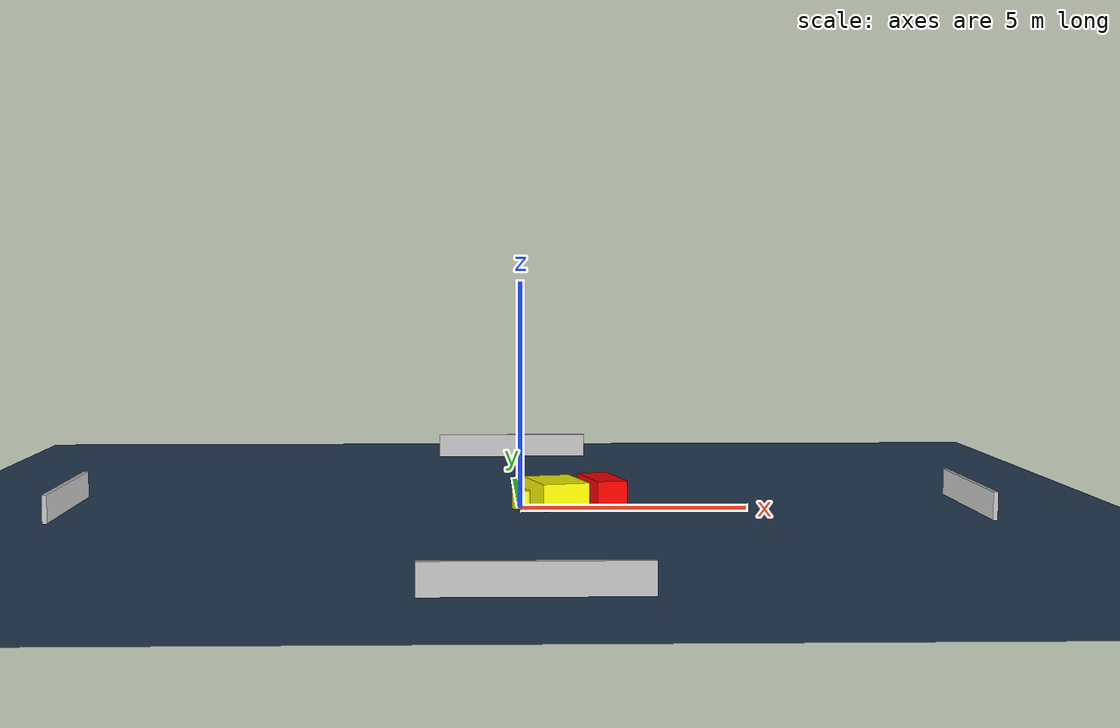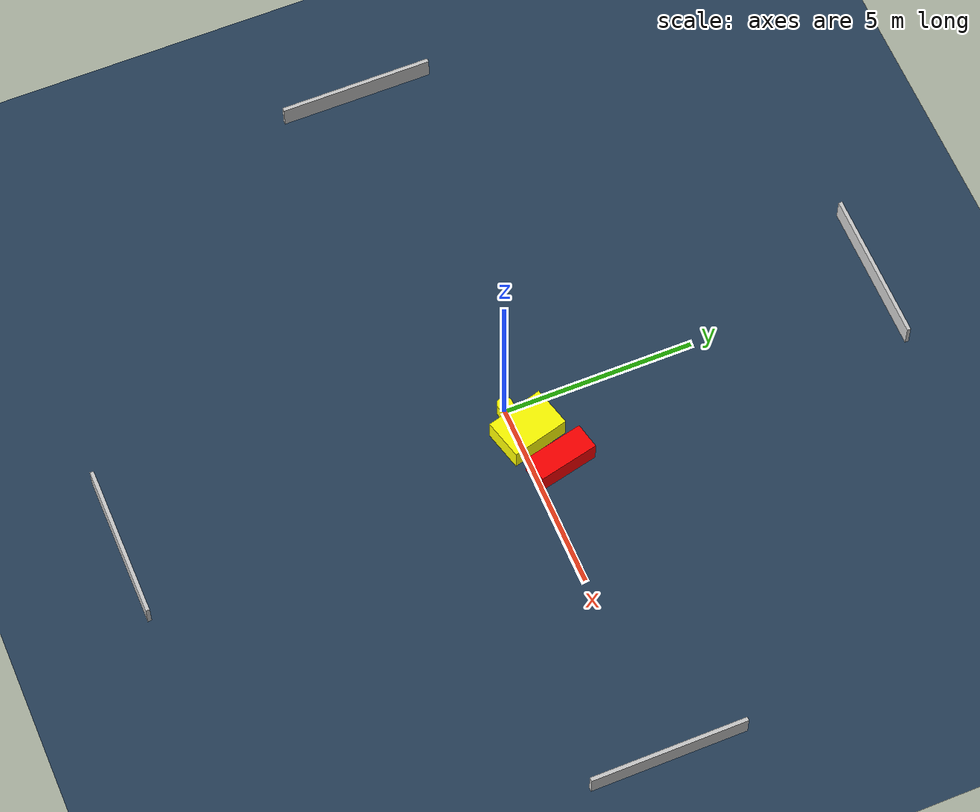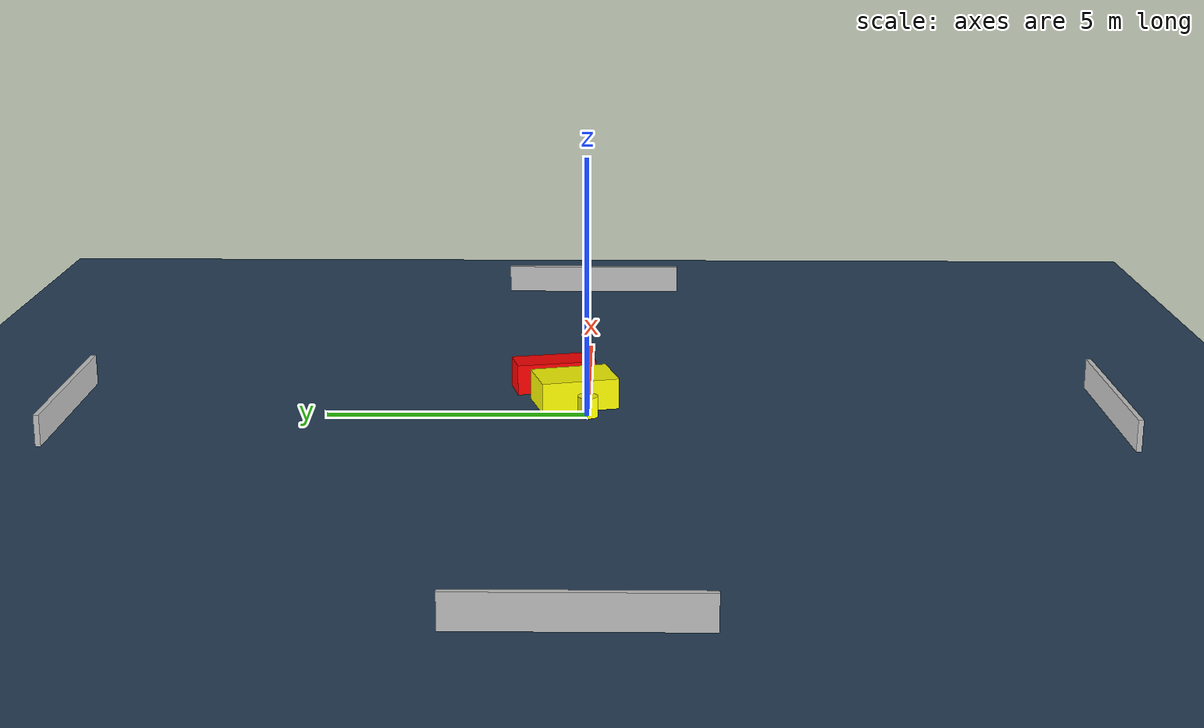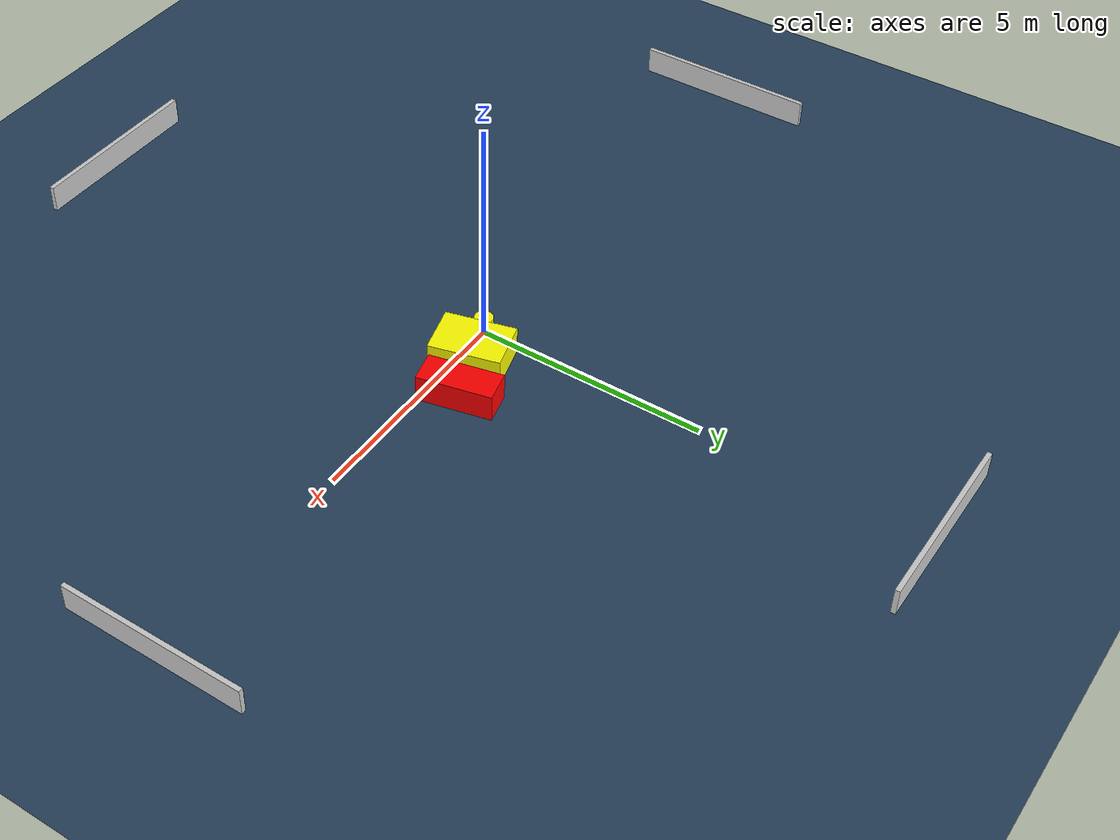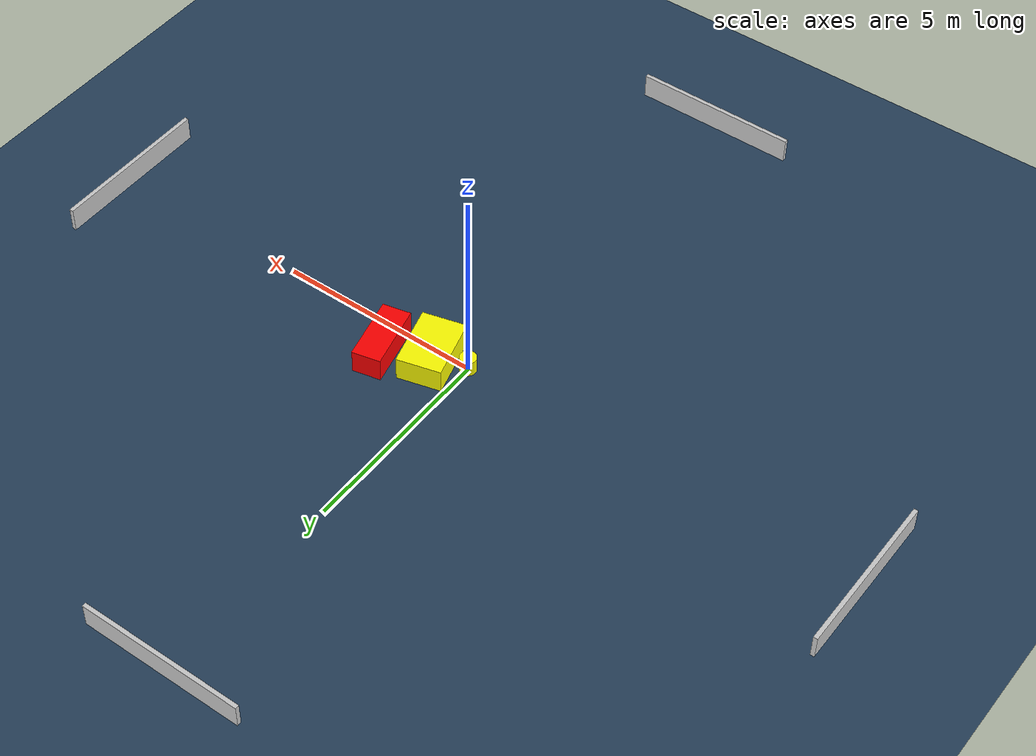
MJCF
<?xml version="1.0" ?>
<mujoco model="generated_environment">
  <option timestep="0.01" integrator="RK4" cone="elliptic"/>
  <default>
    <geom density="1"/>
  </default>
  <asset>
    <texture builtin="gradient" height="3072" name="skybox" rgb1="0.3 0.5 0.7" rgb2="0 0 0" type="skybox" width="512"/>
    <texture builtin="checker" height="300" name="groundplane" rgb1="0.2 0.3 0.4" rgb2="0.1 0.2 0.3" type="2d" width="300"/>
    <material name="groundplane" reflectance="0.2" texrepeat="5 5" texture="groundplane"/>
  </asset>
  <worldbody>
    <light dir="0 0 -1" directional="true" pos="0 0 1.5"/>
    <geom condim="3" friction="0.5 0.005 0.001" material="groundplane" name="floor" pos="0 0 0" size="0 0 0.05" type="plane"/>
    <body name="walls">
      <geom name="wall_1" condim="4" pos="-10.0 0.0 0.3" rgba="0.800000011920929 0.800000011920929 0.800000011920929 1.0" size="0.05 2.0 0.3" type="box"/>
      <geom name="wall_2" condim="4" pos="10.0 0.0 0.3" rgba="0.800000011920929 0.800000011920929 0.800000011920929 1.0" size="0.05 2.0 0.3" type="box"/>
      <geom name="wall_3" condim="4" pos="0.0 -10.0 0.3" rgba="0.800000011920929 0.800000011920929 0.800000011920929 1.0" size="2.0 0.05 0.3" type="box"/>
      <geom name="wall_4" condim="4" pos="0.0 10.0 0.3" rgba="0.800000011920929 0.800000011920929 0.800000011920929 1.0" size="2.0 0.05 0.3" type="box"/>
    </body>
    <body name="robot">
      <joint name="joint_x" type="slide" pos="0 0 0" axis="1 0 0"/>
      <joint name="joint_y" type="slide" pos="0 0 0" axis="0 1 0"/>
      <geom name="robot" type="cylinder" pos="0.0 0.0 0.2" size="0.2 0.2 0.0" mass="5.0" friction="1.0 0.005 0.0001" condim="4" rgba="1.0 1.0 0.0 1.0"/>
    </body>
    <body name="obstacle_1_movable">
      <geom name="obstacle_1_movable" condim="4" pos="0.7977553412637993 0.26987666673093047 0.3" euler="0 0 194.9032799166497" friction="0.0 0.005 0.001" rgba="1.0 1.0 0.0 1.0" size="0.5333983235296199 0.7616696276156816 0.3" type="box" mass="0.1"/>
      <joint type="free"/>
    </body>
    <body name="obstacle_2_static">
      <geom name="obstacle_2_static" condim="4" pos="1.8575582798257262 0.7035497676499651 0.3" euler="0 0 102.81555413900018" friction="0.0 0.005 0.001" rgba="1.0 0.0 0.0 1.0" size="0.79659300630962 0.34333128075053587 0.3" type="box"/>
    </body>
  </worldbody>
  <actuator>
    <motor name="actuator_x" joint="joint_x" gear="1" ctrlrange="-1 1"/>
    <motor name="actuator_y" joint="joint_y" gear="1" ctrlrange="-1 1"/>
  </actuator>
</mujoco>
